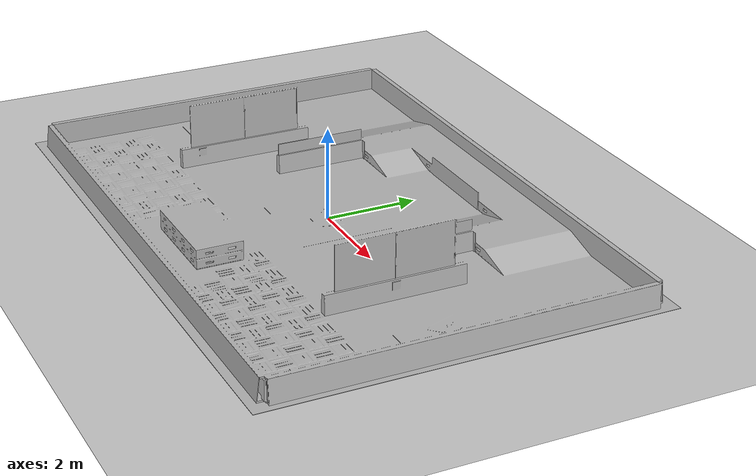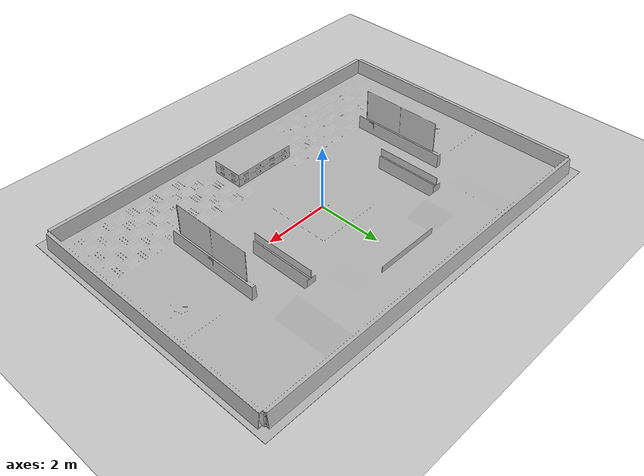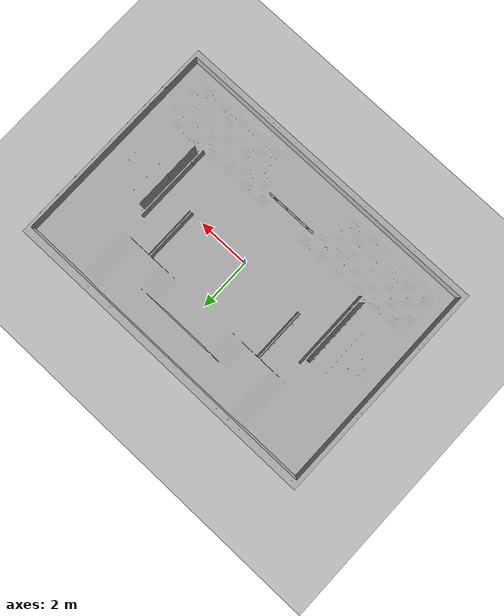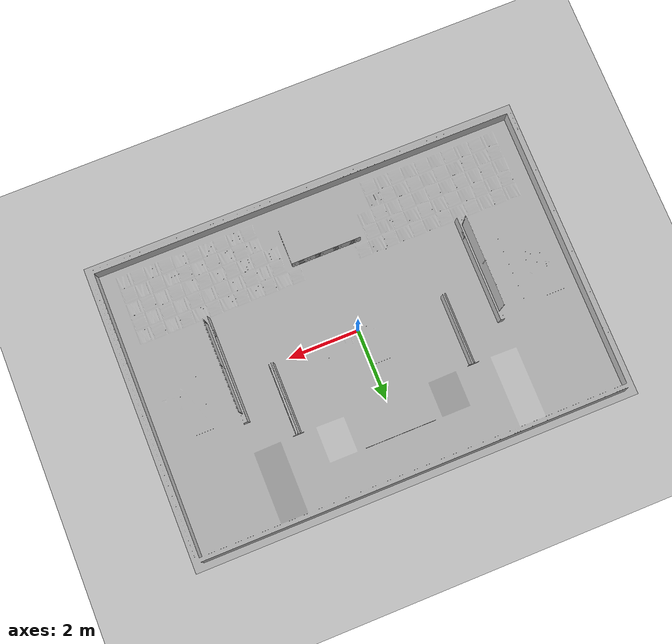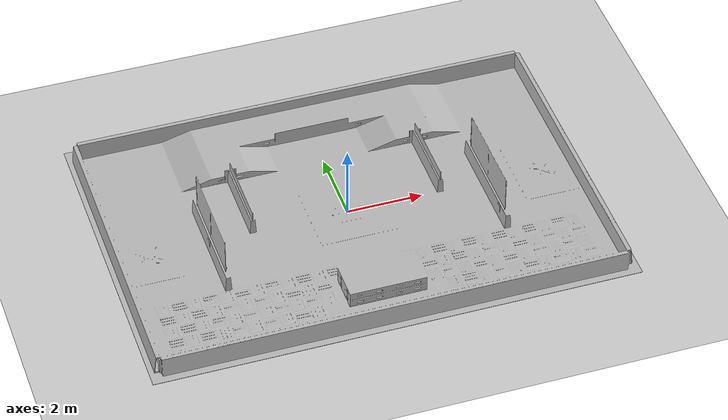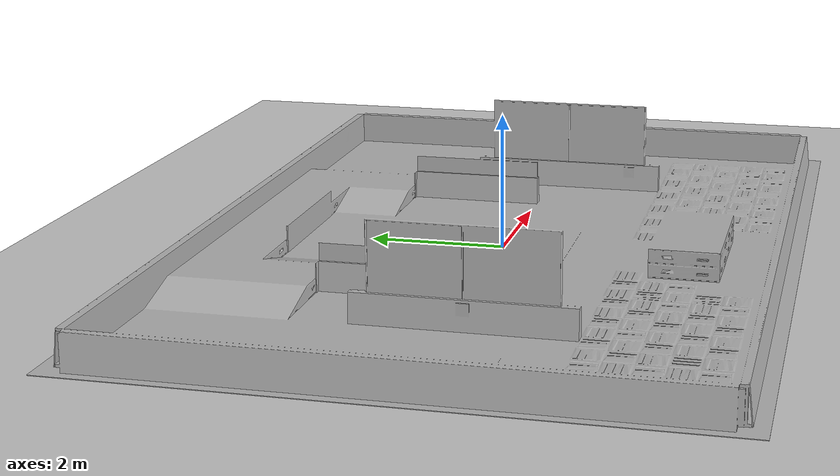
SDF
<?xml version="1.0"?>
<sdf version="1.6">
  <world name="my_world">

    <!-- Add ground plane -->
    <include>
      <uri>model://ground_plane</uri>
    </include>

    <!-- Directional light (like sun but dimmer) -->
    <light type="directional" name="sun">
      <cast_shadows>true</cast_shadows>
      <pose>0 0 10 0 0 0</pose>
      <diffuse>0.6 0.6 0.6 1</diffuse>
      <specular>0.2 0.2 0.2 1</specular>
      <direction>-0.5 0.1 -0.9</direction>
    </light>

    <!-- Ambient light so shadows aren't pitch black -->
    <scene>
      <ambient>0.3 0.3 0.3 1</ambient>
    </scene>

    <!-- Your map model -->
    <model name="my_map">
      <static>true</static>
      <!-- pose: X Y Z Roll Pitch Yaw (radians) -->
      <!-- Rotated -90deg (clockwise) about Z so the 12m side aligns with X -->
      <pose>0 0 0 0 0 -1.5708</pose>

      <link name="link">
        <visual name="visual">
          <geometry>
            <mesh>
              <uri>../meshes/2026_ARC_3v3_simplified.stl</uri>
              <scale>0.0254 0.0254 0.0254</scale>
            </mesh>
          </geometry>
        </visual>

        <collision name="collision">
          <geometry>
            <mesh>
              <uri>../meshes/2026_ARC_3v3_simplified.stl</uri>
              <!-- Keep collision scale identical to visual scale -->
              <scale>0.0254 0.0254 0.0254</scale>
            </mesh>
          </geometry>
        </collision>
      </link>
    </model>

  </world>
</sdf>
